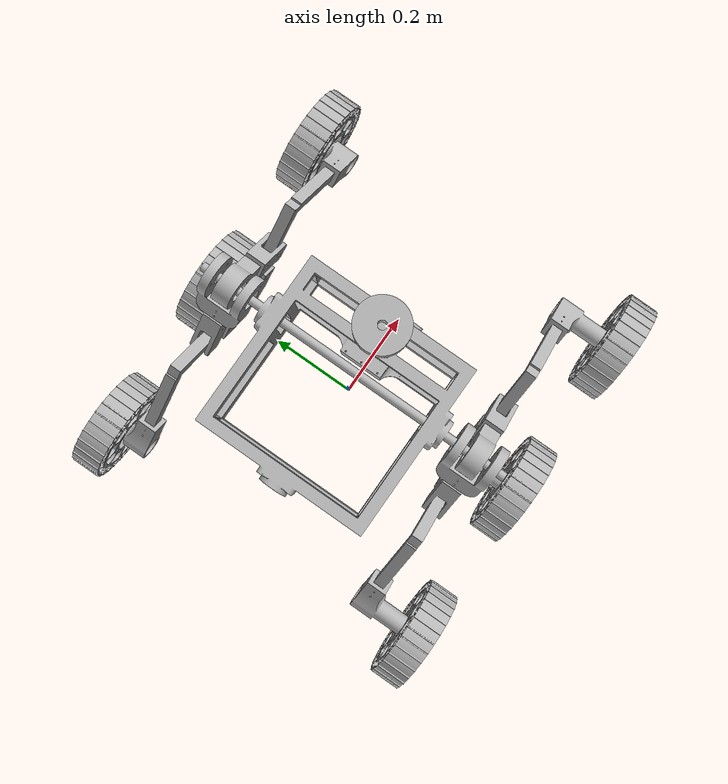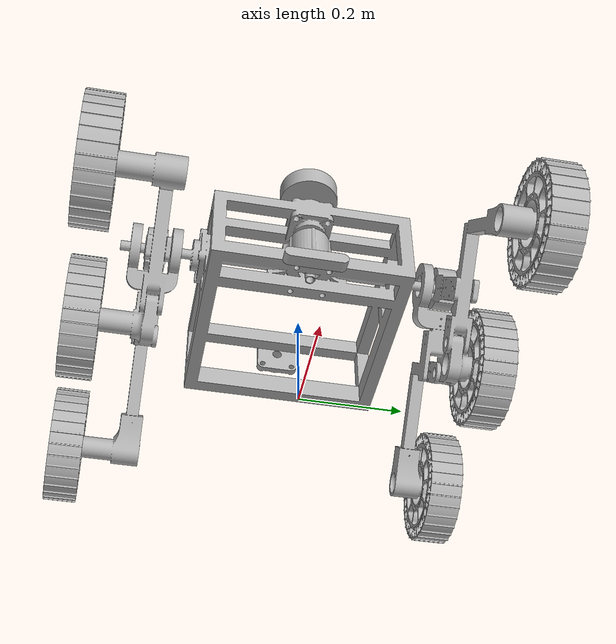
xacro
<?xml version="1.0" ?>
<robot name="zine_rover" xmlns:xacro="http://www.ros.org/wiki/xacro">

<xacro:include filename="$(find zine_rover_description)/urdf/materials.xacro" />
<xacro:include filename="$(find zine_rover_description)/urdf/zine_rover.gazebo" />
<link name="base_link">
  <inertial>
    <origin xyz="-0.008464028434987501 -0.00012720246340532364 0.29059860690266914" rpy="0 0 0"/>
    <mass value="38.73454767745476"/>
    <inertia ixx="1.01308" iyy="0.912457" izz="1.613929" ixy="0.000567" iyz="-0.000288" ixz="-0.01019"/>
  </inertial>
  <visual>
    <origin xyz="0 0 0" rpy="0 0 0"/>
    <geometry>
      <mesh filename="file://$(find zine_rover_description)/meshes/base_link.stl" scale="0.001 0.001 0.001"/>
    </geometry>
    <material name="silver"/>
  </visual>
  <collision>
    <origin xyz="0 0 0" rpy="0 0 0"/>
    <geometry>
      <mesh filename="file://$(find zine_rover_description)/meshes/base_link.stl" scale="0.001 0.001 0.001"/>
    </geometry>
  </collision>
</link>

<link name="right_leg_link_1">
  <inertial>
    <origin xyz="-0.0013207563354463506 0.06659219509746495 -0.1092914309676741" rpy="0 0 0"/>
    <mass value="16.47124704533649"/>
    <inertia ixx="0.117611" iyy="0.774902" izz="0.677974" ixy="-0.000289" iyz="-0.008207" ixz="-0.000244"/>
  </inertial>
  <visual>
    <origin xyz="-0.025571 0.370084 -0.330926" rpy="0 0 0"/>
    <geometry>
      <mesh filename="file://$(find zine_rover_description)/meshes/right_leg_link_1.stl" scale="0.001 0.001 0.001"/>
    </geometry>
    <material name="silver"/>
  </visual>
  <collision>
    <origin xyz="-0.025571 0.370084 -0.330926" rpy="0 0 0"/>
    <geometry>
      <mesh filename="file://$(find zine_rover_description)/meshes/right_leg_link_1.stl" scale="0.001 0.001 0.001"/>
    </geometry>
  </collision>
</link>

<link name="r3_link_1">
  <inertial>
    <origin xyz="-0.00017925524376938284 0.03075863249014632 -0.0006166366501741266" rpy="0 0 0"/>
    <mass value="7.008299929640141"/>
    <inertia ixx="0.028649" iyy="0.052079" izz="0.028789" ixy="1e-06" iyz="2e-06" ixz="-5e-06"/>
  </inertial>
  <visual>
    <origin xyz="0.357593 0.396347 -0.110404" rpy="0 0 0"/>
    <geometry>
      <mesh filename="file://$(find zine_rover_description)/meshes/r3_link_1.stl" scale="0.001 0.001 0.001"/>
    </geometry>
    <material name="silver"/>
  </visual>
  <collision>
    <origin xyz="0.357593 0.396347 -0.110404" rpy="0 0 0"/>
    <geometry>
      <mesh filename="file://$(find zine_rover_description)/meshes/r3_link_1.stl" scale="0.001 0.001 0.001"/>
    </geometry>
  </collision>
</link>

<link name="r2_link_1">
  <inertial>
    <origin xyz="-0.00019068765485445727 0.03075863249055144 -0.0006126517346900229" rpy="0 0 0"/>
    <mass value="7.008299929640126"/>
    <inertia ixx="0.028649" iyy="0.052079" izz="0.028789" ixy="1e-06" iyz="2e-06" ixz="-3e-06"/>
  </inertial>
  <visual>
    <origin xyz="-0.026925 0.394047 -0.114116" rpy="0 0 0"/>
    <geometry>
      <mesh filename="file://$(find zine_rover_description)/meshes/r2_link_1.stl" scale="0.001 0.001 0.001"/>
    </geometry>
    <material name="silver"/>
  </visual>
  <collision>
    <origin xyz="-0.026925 0.394047 -0.114116" rpy="0 0 0"/>
    <geometry>
      <mesh filename="file://$(find zine_rover_description)/meshes/r2_link_1.stl" scale="0.001 0.001 0.001"/>
    </geometry>
  </collision>
</link>

<link name="r1_link_1">
  <inertial>
    <origin xyz="0.00021185036765086762 0.030758632490848592 0.0006053496806429359" rpy="0 0 0"/>
    <mass value="7.008299929640157"/>
    <inertia ixx="0.028649" iyy="0.052079" izz="0.028789" ixy="-1e-06" iyz="-2e-06" ixz="2e-06"/>
  </inertial>
  <visual>
    <origin xyz="-0.410467 0.395997 -0.112676" rpy="0 0 0"/>
    <geometry>
      <mesh filename="file://$(find zine_rover_description)/meshes/r1_link_1.stl" scale="0.001 0.001 0.001"/>
    </geometry>
    <material name="silver"/>
  </visual>
  <collision>
    <origin xyz="-0.410467 0.395997 -0.112676" rpy="0 0 0"/>
    <geometry>
      <mesh filename="file://$(find zine_rover_description)/meshes/r1_link_1.stl" scale="0.001 0.001 0.001"/>
    </geometry>
  </collision>
</link>

<link name="l3_link_1">
  <inertial>
    <origin xyz="-0.00017925524364587053 -0.030758732308784564 -0.0006166366501741682" rpy="0 0 0"/>
    <mass value="7.008299929640113"/>
    <inertia ixx="0.028649" iyy="0.052079" izz="0.028789" ixy="-1e-06" iyz="-2e-06" ixz="-5e-06"/>
  </inertial>
  <visual>
    <origin xyz="0.357593 -0.400459 -0.110404" rpy="0 0 0"/>
    <geometry>
      <mesh filename="file://$(find zine_rover_description)/meshes/l3_link_1.stl" scale="0.001 0.001 0.001"/>
    </geometry>
    <material name="silver"/>
  </visual>
  <collision>
    <origin xyz="0.357593 -0.400459 -0.110404" rpy="0 0 0"/>
    <geometry>
      <mesh filename="file://$(find zine_rover_description)/meshes/l3_link_1.stl" scale="0.001 0.001 0.001"/>
    </geometry>
  </collision>
</link>

<link name="l2_link_1">
  <inertial>
    <origin xyz="0.00018998984029418992 -0.030758732309175196 0.0006132686592397046" rpy="0 0 0"/>
    <mass value="7.008299929640119"/>
    <inertia ixx="0.028649" iyy="0.052079" izz="0.028789" ixy="1e-06" iyz="2e-06" ixz="-3e-06"/>
  </inertial>
  <visual>
    <origin xyz="-0.026925 -0.398159 -0.114116" rpy="0 0 0"/>
    <geometry>
      <mesh filename="file://$(find zine_rover_description)/meshes/l2_link_1.stl" scale="0.001 0.001 0.001"/>
    </geometry>
    <material name="silver"/>
  </visual>
  <collision>
    <origin xyz="-0.026925 -0.398159 -0.114116" rpy="0 0 0"/>
    <geometry>
      <mesh filename="file://$(find zine_rover_description)/meshes/l2_link_1.stl" scale="0.001 0.001 0.001"/>
    </geometry>
  </collision>
</link>

<link name="l1_link_1">
  <inertial>
    <origin xyz="0.00021185036776399935 -0.030758732309567827 0.0006053496806437547" rpy="0 0 0"/>
    <mass value="7.008299929640155"/>
    <inertia ixx="0.028649" iyy="0.052079" izz="0.028789" ixy="1e-06" iyz="2e-06" ixz="2e-06"/>
  </inertial>
  <visual>
    <origin xyz="-0.410467 -0.400109 -0.112676" rpy="0 0 0"/>
    <geometry>
      <mesh filename="file://$(find zine_rover_description)/meshes/l1_link_1.stl" scale="0.001 0.001 0.001"/>
    </geometry>
    <material name="silver"/>
  </visual>
  <collision>
    <origin xyz="-0.410467 -0.400109 -0.112676" rpy="0 0 0"/>
    <geometry>
      <mesh filename="file://$(find zine_rover_description)/meshes/l1_link_1.stl" scale="0.001 0.001 0.001"/>
    </geometry>
  </collision>
</link>

<link name="left_leg_link_1">
  <inertial>
    <origin xyz="-0.0013207471590895165 -0.06659229508359005 -0.10929147983765616" rpy="0 0 0"/>
    <mass value="16.471253218381243"/>
    <inertia ixx="0.117612" iyy="0.774902" izz="0.677974" ixy="0.000289" iyz="0.008207" ixz="-0.000244"/>
  </inertial>
  <visual>
    <origin xyz="-0.025571 -0.374196 -0.330926" rpy="0 0 0"/>
    <geometry>
      <mesh filename="file://$(find zine_rover_description)/meshes/left_leg_link_1.stl" scale="0.001 0.001 0.001"/>
    </geometry>
    <material name="silver"/>
  </visual>
  <collision>
    <origin xyz="-0.025571 -0.374196 -0.330926" rpy="0 0 0"/>
    <geometry>
      <mesh filename="file://$(find zine_rover_description)/meshes/left_leg_link_1.stl" scale="0.001 0.001 0.001"/>
    </geometry>
  </collision>
</link>

<link name="laser_link_1">
  <inertial>
    <origin xyz="-1.0925525761873445e-10 1.7081667261754058e-12 0.019999500000943637" rpy="0 0 0"/>
    <mass value="3.3146897084726623"/>
    <inertia ixx="0.003392" iyy="0.003392" izz="0.0059" ixy="-0.0" iyz="0.0" ixz="-0.0"/>
  </inertial>
  <visual>
    <origin xyz="-0.123 -0.0 -0.429375" rpy="0 0 0"/>
    <geometry>
      <mesh filename="file://$(find zine_rover_description)/meshes/laser_link_1.stl" scale="0.001 0.001 0.001"/>
    </geometry>
    <material name="silver"/>
  </visual>
  <collision>
    <origin xyz="-0.123 -0.0 -0.429375" rpy="0 0 0"/>
    <geometry>
      <mesh filename="file://$(find zine_rover_description)/meshes/laser_link_1.stl" scale="0.001 0.001 0.001"/>
    </geometry>
  </collision>
</link>

<link name="camera_bottom_screw_frame">
  <inertial>
    <origin xyz="0.012500040998467493 1.7078279068716285e-12 1.2811418592661994e-12" rpy="0 0 0"/>
    <inertia ixx="0.001" iyy="0.001" izz="0.001" ixy="0.000" iyz="0.000" ixz="0.000"/>
    <mass value="0.564"/>
  </inertial>
  <visual>
    <origin xyz="-0.166 -0.0 -0.2" rpy="0 0 0"/>
    <geometry>
      <mesh filename="file://$(find zine_rover_description)/meshes/camera_link_1.stl" scale="0.001 0.001 0.001"/>
    </geometry>
    <material name="silver"/>
  </visual>
  <collision>
    <origin xyz="-0.166 -0.0 -0.2" rpy="0 0 0"/>
    <geometry>
      <mesh filename="file://$(find zine_rover_description)/meshes/camera_link_1.stl" scale="0.001 0.001 0.001"/>
    </geometry>
    <material name="silver"/>
  </collision>
</link>

<link name="camera_link"></link>

<link name="camera_depth_frame"></link>

<link name="camera_depth_optical_frame"></link>

<link name="camera_color_frame"></link>

<link name="camera_color_optical_frame"></link>

<link name="camera_left_ir_frame"></link>

<link name="camera_left_ir_optical_frame"></link>

<link name="camera_right_ir_frame"></link>

<link name="camera_right_ir_optical_frame"></link>

<link name="base_footprint">
  <box_inertia m="0" w="0" d="0" h="0"/>
</link>

<joint name="base_joint" type="fixed">
  <parent link="base_link"/>
  <child link="base_footprint"/>
  <origin xyz="0 0 0" rpy="0 0 0"/>
</joint>

<joint name="right_leg_joint" type="fixed">
  <origin xyz="0.025571 -0.370084 0.330926" rpy="0 0 0"/>
  <parent link="base_link"/>
  <child link="right_leg_link_1"/>
</joint>

<joint name="r3_joint" type="continuous">
  <origin xyz="-0.383164 -0.026263 -0.220522" rpy="0 0 ${-pi}"/>
  <parent link="right_leg_link_1"/>
  <child link="r3_link_1"/>
  <axis xyz="0.0 -1.0 0.0"/>
</joint>

<joint name="r2_joint" type="continuous">
  <origin xyz="0.001354 -0.023963 -0.21681" rpy="0 0 ${-pi}"/>
  <parent link="right_leg_link_1"/>
  <child link="r2_link_1"/>
  <axis xyz="0.0 -1.0 0.0"/>
</joint>

<joint name="r1_joint" type="continuous">
  <origin xyz="0.384896 -0.025913 -0.21825" rpy="0 0 ${-pi}"/>net
  <parent link="right_leg_link_1"/>
  <child link="r1_link_1"/>
  <axis xyz="0.0 -1.0 0.0"/>
</joint>

<joint name="l3_joint" type="continuous">
  <origin xyz="-0.383164 0.026263 -0.220522" rpy="0 0 0"/>
  <parent link="left_leg_link_1"/>
  <child link="l3_link_1"/>
  <axis xyz="-0.0 1.0 -0.0"/>
</joint>

<joint name="l2_joint" type="continuous">
  <origin xyz="0.001354 0.023963 -0.21681" rpy="0 0 0"/>
  <parent link="left_leg_link_1"/>
  <child link="l2_link_1"/>
  <axis xyz="0.0 1.0 0.0"/>
</joint>

<joint name="l1_jont" type="continuous">
  <origin xyz="0.384896 0.025913 -0.21825" rpy="0 0 0"/>
  <parent link="left_leg_link_1"/>
  <child link="l1_link_1"/>
  <axis xyz="-0.0 1.0 -0.0"/>
</joint>

<joint name="left_leg_joint" type="fixed">
  <origin xyz="0.025571 0.374196 0.330926" rpy="0 0 0"/>
  <parent link="base_link"/>
  <child link="left_leg_link_1"/>
</joint>

<joint name="laser_joint" type="fixed">
  <origin xyz="0.123 0.0 0.429375" rpy="0 0 0"/>
  <parent link="base_link"/>
  <child link="laser_link_1"/>
  <axis xyz="-0.0 0.0 1.0"/>
</joint>

<joint name="camera_joint" type="fixed">
  <parent link="base_link" />
  <child link="camera_bottom_screw_frame" />
  <origin xyz="0.166 0.0 0.2" rpy="0 0 0"/>
</joint>

<joint name="camera_link_joint" type="fixed">
  <parent link="camera_bottom_screw_frame" />
  <child link="camera_link" />
  <origin xyz="0.045 0.016 0.0125 " rpy="0 0 0" />
</joint>

<joint name="camera_depth_joint" type="fixed">
  <parent link="camera_link" />
  <child link="camera_depth_frame" />
  <origin xyz="0 0 0" rpy="0 0 0" />
</joint>

<joint name="camera_depth_optical_joint" type="fixed">
  <parent link="camera_depth_frame" />
  <child link="camera_depth_optical_frame" />
  <origin xyz="0 0 0 " rpy="-1.57 0 -1.57" />
</joint>

<joint name="camera_color_joint" type="fixed">
  <parent link="camera_depth_frame" />
  <child link="camera_color_frame" />
  <origin xyz="0 0 0" rpy="0 0 0" />
</joint>

<joint name="camera_color_optical_joint" type="fixed">
  <parent link="camera_color_frame" />
  <child link="camera_color_optical_frame" />
  <origin xyz="0 0 0 " rpy="-1.57 0 -1.57" />
</joint>

<joint name="camera_left_ir_joint" type="fixed">
  <parent link="camera_depth_frame" />
  <child link="camera_left_ir_frame" />
  <origin xyz="0 0 0 " rpy="0 0 0 " />
</joint>

<joint name="camera_left_ir_optical_joint" type="fixed">
  <parent link="camera_left_ir_frame" />
  <child link="camera_left_ir_optical_frame" />
  <origin xyz="0 0 0 " rpy="-1.57 0 -1.57" />
</joint>

<joint name="camera_right_ir_joint" type="fixed">
  <parent link="camera_depth_frame" />
  <child link="camera_right_ir_frame" />
  <origin xyz="0 -0.050 0 " rpy="0 0 0" />
</joint>

<joint name="camera_right_ir_optical_joint" type="fixed">
  <parent link="camera_right_ir_frame" />
  <child link="camera_right_ir_optical_frame" />
  <origin xyz="0 0 0 " rpy="-1.57 0 -1.57" />
</joint>

</robot>

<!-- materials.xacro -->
<robot name="zine_rover" xmlns:xacro="http://www.ros.org/wiki/xacro" >

<material name="silver">
  <color rgba="0.700 0.700 0.700 1.000"/>
</material>

</robot>

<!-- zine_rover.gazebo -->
<robot name="zine_rover" xmlns:xacro="http://www.ros.org/wiki/xacro" >

<xacro:property name="body_color" value="Gazebo/white" />

<gazebo reference="base_link">
  <material>${body_color}</material>
  <mu1>0.2</mu1>
  <mu2>0.2</mu2>
  <self_collide>true</self_collide>
  <gravity>true</gravity>
</gazebo>

<gazebo reference="right_leg_link_1">
  <material>${body_color}</material>
  <mu1>0.2</mu1>
  <mu2>0.2</mu2>
  <self_collide>true</self_collide>
</gazebo>

<gazebo reference="r3_link_1">
  <material>${body_color}</material>
  <mu1>0.2</mu1>
  <mu2>0.2</mu2>
  <self_collide>true</self_collide>
</gazebo>

<gazebo reference="r2_link_1">
  <material>${body_color}</material>
  <mu1>0.2</mu1>
  <mu2>0.2</mu2>
  <self_collide>true</self_collide>
</gazebo>

<gazebo reference="r1_link_1">
  <material>${body_color}</material>
  <mu1>0.2</mu1>
  <mu2>0.2</mu2>
  <self_collide>true</self_collide>
</gazebo>

<gazebo reference="l3_link_1">
  <material>${body_color}</material>
  <mu1>0.2</mu1>
  <mu2>0.2</mu2>
  <self_collide>true</self_collide>
</gazebo>

<gazebo reference="l2_link_1">
  <material>${body_color}</material>
  <mu1>0.2</mu1>
  <mu2>0.2</mu2>
  <self_collide>true</self_collide>
</gazebo>

<gazebo reference="l1_link_1">
  <material>${body_color}</material>
  <mu1>0.2</mu1>
  <mu2>0.2</mu2>
  <self_collide>true</self_collide>
</gazebo>

<gazebo reference="left_leg_link_1">
  <material>${body_color}</material>
  <mu1>0.2</mu1>
  <mu2>0.2</mu2>
  <self_collide>true</self_collide>
</gazebo>

<gazebo reference="camera_link_1">
  <material>${body_color}</material>
  <mu1>0.2</mu1>
  <mu2>0.2</mu2>
  <self_collide>true</self_collide>
</gazebo>

<gazebo reference="laser_link_1">
  <material>${body_color}</material>
  <mu1>0.2</mu1>
  <mu2>0.2</mu2>
  <self_collide>true</self_collide>
</gazebo>

<gazebo reference="camera_link">
    <sensor name="imu_sensor" type="imu">
      <plugin filename="libgazebo_ros_imu_sensor.so" name="imu_plugin">
        <ros>
          <namespace>camera</namespace>
          <remapping>~/out:=imu</remapping>
        </ros>
        <initial_orientation_as_reference>false</initial_orientation_as_reference>
      </plugin>
      <always_on>true</always_on>
      <update_rate>100</update_rate>
      <visualize>true</visualize>
      <imu>
        <angular_velocity>
          <x>
            <noise type="gaussian">
              <mean>0.0</mean>
              <stddev>2e-4</stddev>
              <bias_mean>0.0000075</bias_mean>
              <bias_stddev>0.0000008</bias_stddev>
            </noise>
          </x>
          <y>
            <noise type="gaussian">
              <mean>0.0</mean>
              <stddev>2e-4</stddev>
              <bias_mean>0.0000075</bias_mean>
              <bias_stddev>0.0000008</bias_stddev>
            </noise>
          </y>
          <z>
            <noise type="gaussian">
              <mean>0.0</mean>
              <stddev>2e-4</stddev>
              <bias_mean>0.0000075</bias_mean>
              <bias_stddev>0.0000008</bias_stddev>
            </noise>
          </z>
        </angular_velocity>
        <linear_acceleration>
          <x>
            <noise type="gaussian">
              <mean>0.0</mean>
              <stddev>1.7e-2</stddev>
              <bias_mean>0.1</bias_mean>
              <bias_stddev>0.001</bias_stddev>
            </noise>
          </x>
          <y>
            <noise type="gaussian">
              <mean>0.0</mean>
              <stddev>1.7e-2</stddev>
              <bias_mean>0.1</bias_mean>
              <bias_stddev>0.001</bias_stddev>
            </noise>
          </y>
          <z>
            <noise type="gaussian">
              <mean>0.0</mean>
              <stddev>1.7e-2</stddev>
              <bias_mean>0.1</bias_mean>
              <bias_stddev>0.001</bias_stddev>
            </noise>
          </z>
        </linear_acceleration>
      </imu>
    </sensor>
  </gazebo>

  <gazebo>
    <plugin name='diff_drive' filename='libgazebo_ros_diff_drive.so'>
      <ros>
        <namespace>/demo</namespace>
        <remap from ="cmd_vel" to="/cmd_vel"/>
      </ros>
      <!-- wheels -->
      <num_wheel_pairs>3</num_wheel_pairs>
      <left_joint>l1_jont</left_joint>
      <left_joint>l2_joint</left_joint>
      <left_joint>l3_joint</left_joint>
      <right_joint>r1_joint</right_joint>
      <right_joint>r2_joint</right_joint>
      <right_joint>r3_joint</right_joint>

      <!-- kinematics -->
      <wheel_separation>0.66</wheel_separation>
      <wheel_diameter>0.2</wheel_diameter>
      <max_wheel_torque>20</max_wheel_torque>
      <max_wheel_acceleration>1.0</max_wheel_acceleration>

      <!-- output -->
      <publish_odom>true</publish_odom>
      <publish_odom_tf>false</publish_odom_tf>
      <publish_wheel_tf>true</publish_wheel_tf>

      <odometry_frame>odom</odometry_frame>
      <robot_base_frame>base_link</robot_base_frame>
    </plugin>
  </gazebo>

  <gazebo reference="camera_link">
    <sensor name="cameradepth" type="depth">
      <camera name="camera">
        <horizontal_fov>1.57</horizontal_fov>
        <image>
          <width>640</width>
          <height>360</height>
        </image>
        <clip>
          <near>0.1</near>
          <far>100</far>
        </clip>
        <noise>
          <type>gaussian</type>
          <mean>0.0</mean>
          <stddev>0.100</stddev>
        </noise>
      </camera>
      <always_on>1</always_on>
      <update_rate>30</update_rate>
      <visualize>0</visualize>
    </sensor>
    <sensor name="cameracolor" type="camera">
      <camera name="camera">
        <horizontal_fov>1.57</horizontal_fov>
        <image>
          <width>640</width>
          <height>360</height>
          <format>RGB_INT8</format>
        </image>
        <clip>
          <near>0.1</near>
          <far>100</far>
        </clip>
        <noise>
          <type>gaussian</type>
          <mean>0.0</mean>
          <stddev>0.007</stddev>
        </noise>
      </camera>
      <always_on>1</always_on>
      <update_rate>30</update_rate>
      <visualize>1</visualize>
    </sensor>
  </gazebo>
  <gazebo reference="camera_left_ir_frame">
    <sensor name="cameraired1" type="camera">
      <camera name="camera">
        <horizontal_fov>1.57</horizontal_fov>
        <image>
          <width>640</width>
          <height>360</height>
          <format>RGB_INT8</format>
        </image>
        <clip>
          <near>0.1</near>
          <far>100</far>
        </clip>
        <noise>
          <type>gaussian</type>
          <mean>0.0</mean>
          <stddev>0.05</stddev>
        </noise>
      </camera>
      <always_on>1</always_on>
      <update_rate>1</update_rate>
      <visualize>0</visualize>
    </sensor>
  </gazebo>
  <gazebo reference="camera_right_ir_frame">
    <sensor name="cameraired2" type="camera">
      <camera name="camera">
        <horizontal_fov>1.57</horizontal_fov>
        <image>
          <width>640</width>
          <height>360</height>
          <format>RGB_INT8</format>
        </image>
        <clip>
          <near>0.1</near>
          <far>100</far>
        </clip>
        <noise>
          <type>gaussian</type>
          <mean>0.0</mean>
          <stddev>0.05</stddev>
        </noise>
      </camera>
      <always_on>1</always_on>
      <update_rate>1</update_rate>
      <visualize>0</visualize>
    </sensor>
  </gazebo>
    <gazebo>
    <plugin name="camera" filename="librealsense_gazebo_plugin.so">
      <prefix>camera</prefix>
      <depthUpdateRate>30.0</depthUpdateRate>
      <colorUpdateRate>30.0</colorUpdateRate>
      <infraredUpdateRate>10.0</infraredUpdateRate>
      <depthTopicName>/front/stereo_camera/left/depth</depthTopicName>
      <depthCameraInfoTopicName>depth/camera_info</depthCameraInfoTopicName>
      <colorTopicName>/front/stereo_camera/left/rgb</colorTopicName>
      <colorCameraInfoTopicName>/front/stereo_camera/left/camera_info</colorCameraInfoTopicName>
      <infrared1TopicName>/stereo_camera/left/image</infrared1TopicName>
      <infrared1CameraInfoTopicName>/stereo_camera/left/camerainfo</infrared1CameraInfoTopicName>
      <infrared2TopicName>/stereo_camera/right/image</infrared2TopicName>
      <infrared2CameraInfoTopicName>/stereo_camera/right/camerainfo</infrared2CameraInfoTopicName>
      <colorOpticalframeName>camera_color_optical_frame</colorOpticalframeName>
      <depthOpticalframeName>camera_depth_optical_frame</depthOpticalframeName>
      <infrared1OpticalframeName>camera_left_ir_optical_frame</infrared1OpticalframeName>
      <infrared2OpticalframeName>camera_right_ir_optical_frame</infrared2OpticalframeName>
      <rangeMinDepth>0.3</rangeMinDepth>
      <rangeMaxDepth>3.0</rangeMaxDepth>
      <pointCloud>true</pointCloud>
      <pointCloudTopicName>/point_cloud</pointCloudTopicName>
      <pointCloudCutoff>0.3</pointCloudCutoff>
    </plugin>
  </gazebo>

</robot>
